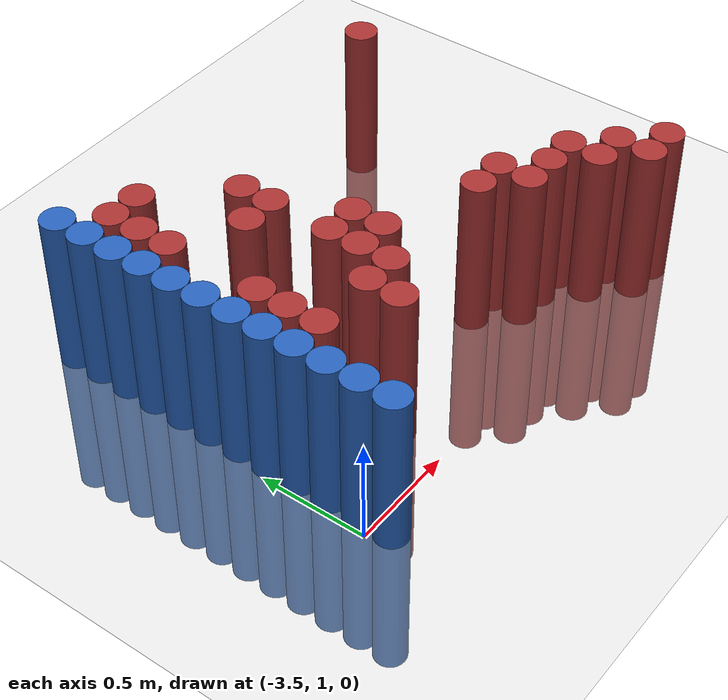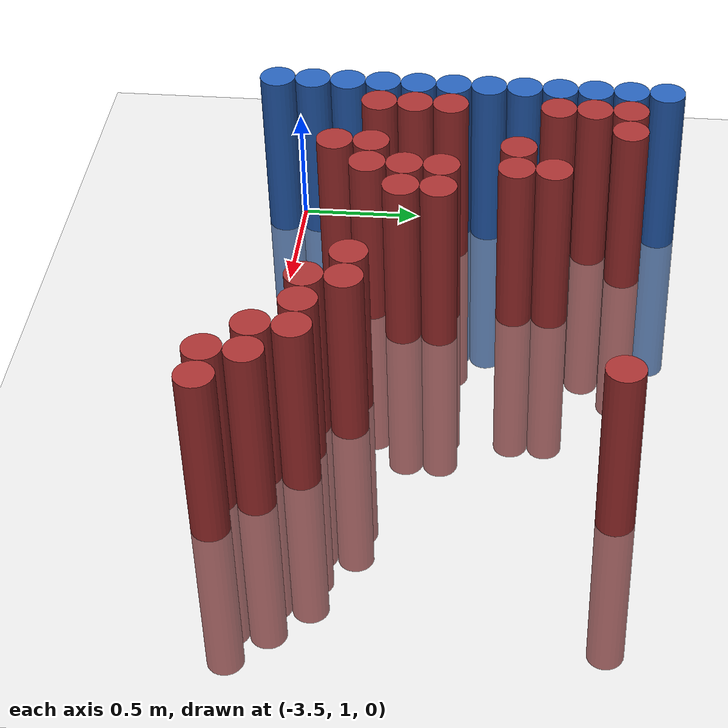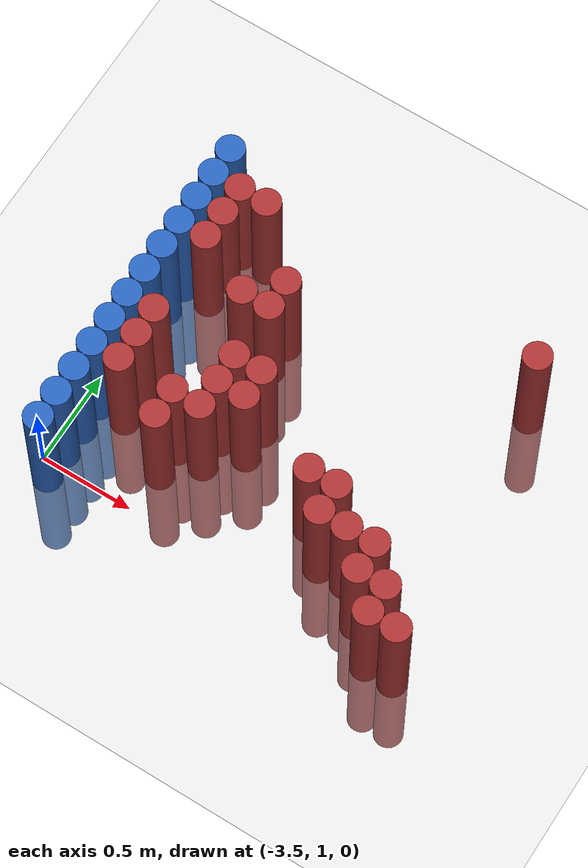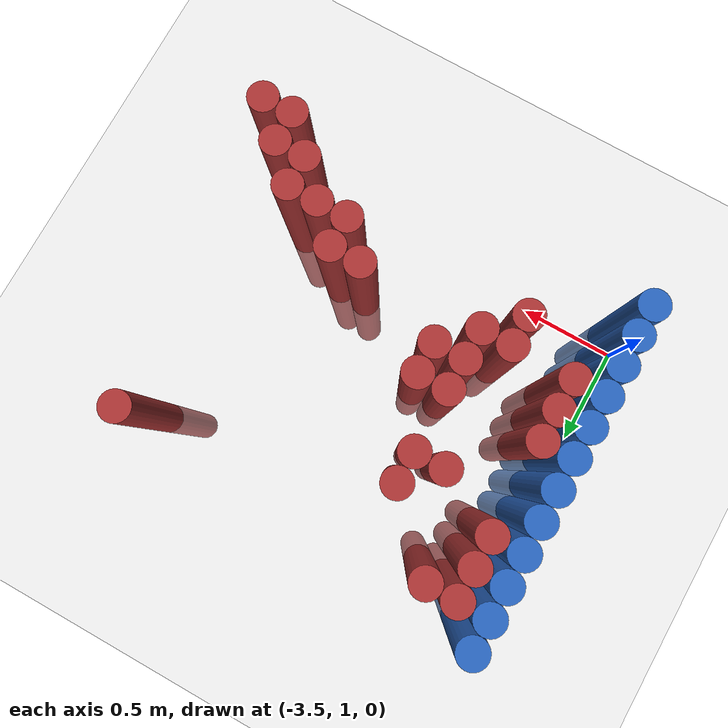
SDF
<sdf version="1.6">
 <world name="default">
  <model name="ground_plane">
   <static>1</static>
   <link name="link">
    <collision name="collision">
     <geometry><plane><normal>0 0 1</normal><size>100 100</size></plane></geometry>
     <surface><friction><ode><mu>100</mu><mu2>50</mu2></ode></friction></surface>
    </collision>
    <visual name="visual">
     <cast_shadows>0</cast_shadows>
     <geometry><plane><normal>0 0 1</normal><size>100 100</size></plane></geometry>
     <material>
      <script><uri>file://media/materials/scripts/gazebo.material</uri><name>Gazebo/Grey</name></script>
     </material>
    </visual>
   </link>
  </model>
  <model name="unit_cylinder_127">
   <static>1</static>
   <pose>-3.425000 0.925000 0.000000 0.000000 0.000000 0.000000</pose>
   <link name="link">
    <inertial>
     <mass>1</mass>
     <inertia><ixx>0.145833</ixx><ixy>0</ixy><ixz>0</ixz><iyy>0.145833</iyy><iyz>0</iyz><izz>0.125</izz></inertia>
    </inertial>
    <collision name="collision">
     <geometry><cylinder><radius>0.075000</radius><length>1.5</length></cylinder></geometry>
    </collision>
    <visual name="visual">
     <geometry><cylinder><radius>0.075000</radius><length>1.5</length></cylinder></geometry>
     <material>
      <ambient>0.152000 0.379000 0.720000 1</ambient>
      <diffuse>0.152000 0.379000 0.720000 1</diffuse>
     </material>
     <material>
      <script><name>Gazebo/Grey</name><uri>file://media/materials/scripts/gazebo.material</uri></script>
     </material>
    </visual>
   </link>
  </model>
  <model name="unit_cylinder_129">
   <static>1</static>
   <pose>-3.425000 1.075000 0.000000 0.000000 0.000000 0.000000</pose>
   <link name="link">
    <inertial>
     <mass>1</mass>
     <inertia><ixx>0.145833</ixx><ixy>0</ixy><ixz>0</ixz><iyy>0.145833</iyy><iyz>0</iyz><izz>0.125</izz></inertia>
    </inertial>
    <collision name="collision">
     <geometry><cylinder><radius>0.075000</radius><length>1.5</length></cylinder></geometry>
    </collision>
    <visual name="visual">
     <geometry><cylinder><radius>0.075000</radius><length>1.5</length></cylinder></geometry>
     <material>
      <ambient>0.152000 0.379000 0.720000 1</ambient>
      <diffuse>0.152000 0.379000 0.720000 1</diffuse>
     </material>
     <material>
      <script><name>Gazebo/Grey</name><uri>file://media/materials/scripts/gazebo.material</uri></script>
     </material>
    </visual>
   </link>
  </model>
  <model name="unit_cylinder_131">
   <static>1</static>
   <pose>-3.425000 1.225000 0.000000 0.000000 0.000000 0.000000</pose>
   <link name="link">
    <inertial>
     <mass>1</mass>
     <inertia><ixx>0.145833</ixx><ixy>0</ixy><ixz>0</ixz><iyy>0.145833</iyy><iyz>0</iyz><izz>0.125</izz></inertia>
    </inertial>
    <collision name="collision">
     <geometry><cylinder><radius>0.075000</radius><length>1.5</length></cylinder></geometry>
    </collision>
    <visual name="visual">
     <geometry><cylinder><radius>0.075000</radius><length>1.5</length></cylinder></geometry>
     <material>
      <ambient>0.152000 0.379000 0.720000 1</ambient>
      <diffuse>0.152000 0.379000 0.720000 1</diffuse>
     </material>
     <material>
      <script><name>Gazebo/Grey</name><uri>file://media/materials/scripts/gazebo.material</uri></script>
     </material>
    </visual>
   </link>
  </model>
  <model name="unit_cylinder_133">
   <static>1</static>
   <pose>-3.425000 1.375000 0.000000 0.000000 0.000000 0.000000</pose>
   <link name="link">
    <inertial>
     <mass>1</mass>
     <inertia><ixx>0.145833</ixx><ixy>0</ixy><ixz>0</ixz><iyy>0.145833</iyy><iyz>0</iyz><izz>0.125</izz></inertia>
    </inertial>
    <collision name="collision">
     <geometry><cylinder><radius>0.075000</radius><length>1.5</length></cylinder></geometry>
    </collision>
    <visual name="visual">
     <geometry><cylinder><radius>0.075000</radius><length>1.5</length></cylinder></geometry>
     <material>
      <ambient>0.152000 0.379000 0.720000 1</ambient>
      <diffuse>0.152000 0.379000 0.720000 1</diffuse>
     </material>
     <material>
      <script><name>Gazebo/Grey</name><uri>file://media/materials/scripts/gazebo.material</uri></script>
     </material>
    </visual>
   </link>
  </model>
  <model name="unit_cylinder_135">
   <static>1</static>
   <pose>-3.425000 1.525000 0.000000 0.000000 0.000000 0.000000</pose>
   <link name="link">
    <inertial>
     <mass>1</mass>
     <inertia><ixx>0.145833</ixx><ixy>0</ixy><ixz>0</ixz><iyy>0.145833</iyy><iyz>0</iyz><izz>0.125</izz></inertia>
    </inertial>
    <collision name="collision">
     <geometry><cylinder><radius>0.075000</radius><length>1.5</length></cylinder></geometry>
    </collision>
    <visual name="visual">
     <geometry><cylinder><radius>0.075000</radius><length>1.5</length></cylinder></geometry>
     <material>
      <ambient>0.152000 0.379000 0.720000 1</ambient>
      <diffuse>0.152000 0.379000 0.720000 1</diffuse>
     </material>
     <material>
      <script><name>Gazebo/Grey</name><uri>file://media/materials/scripts/gazebo.material</uri></script>
     </material>
    </visual>
   </link>
  </model>
  <model name="unit_cylinder_137">
   <static>1</static>
   <pose>-3.425000 1.675000 0.000000 0.000000 0.000000 0.000000</pose>
   <link name="link">
    <inertial>
     <mass>1</mass>
     <inertia><ixx>0.145833</ixx><ixy>0</ixy><ixz>0</ixz><iyy>0.145833</iyy><iyz>0</iyz><izz>0.125</izz></inertia>
    </inertial>
    <collision name="collision">
     <geometry><cylinder><radius>0.075000</radius><length>1.5</length></cylinder></geometry>
    </collision>
    <visual name="visual">
     <geometry><cylinder><radius>0.075000</radius><length>1.5</length></cylinder></geometry>
     <material>
      <ambient>0.152000 0.379000 0.720000 1</ambient>
      <diffuse>0.152000 0.379000 0.720000 1</diffuse>
     </material>
     <material>
      <script><name>Gazebo/Grey</name><uri>file://media/materials/scripts/gazebo.material</uri></script>
     </material>
    </visual>
   </link>
  </model>
  <model name="unit_cylinder_139">
   <static>1</static>
   <pose>-3.425000 1.825000 0.000000 0.000000 0.000000 0.000000</pose>
   <link name="link">
    <inertial>
     <mass>1</mass>
     <inertia><ixx>0.145833</ixx><ixy>0</ixy><ixz>0</ixz><iyy>0.145833</iyy><iyz>0</iyz><izz>0.125</izz></inertia>
    </inertial>
    <collision name="collision">
     <geometry><cylinder><radius>0.075000</radius><length>1.5</length></cylinder></geometry>
    </collision>
    <visual name="visual">
     <geometry><cylinder><radius>0.075000</radius><length>1.5</length></cylinder></geometry>
     <material>
      <ambient>0.152000 0.379000 0.720000 1</ambient>
      <diffuse>0.152000 0.379000 0.720000 1</diffuse>
     </material>
     <material>
      <script><name>Gazebo/Grey</name><uri>file://media/materials/scripts/gazebo.material</uri></script>
     </material>
    </visual>
   </link>
  </model>
  <model name="unit_cylinder_141">
   <static>1</static>
   <pose>-3.425000 1.975000 0.000000 0.000000 0.000000 0.000000</pose>
   <link name="link">
    <inertial>
     <mass>1</mass>
     <inertia><ixx>0.145833</ixx><ixy>0</ixy><ixz>0</ixz><iyy>0.145833</iyy><iyz>0</iyz><izz>0.125</izz></inertia>
    </inertial>
    <collision name="collision">
     <geometry><cylinder><radius>0.075000</radius><length>1.5</length></cylinder></geometry>
    </collision>
    <visual name="visual">
     <geometry><cylinder><radius>0.075000</radius><length>1.5</length></cylinder></geometry>
     <material>
      <ambient>0.152000 0.379000 0.720000 1</ambient>
      <diffuse>0.152000 0.379000 0.720000 1</diffuse>
     </material>
     <material>
      <script><name>Gazebo/Grey</name><uri>file://media/materials/scripts/gazebo.material</uri></script>
     </material>
    </visual>
   </link>
  </model>
  <model name="unit_cylinder_143">
   <static>1</static>
   <pose>-3.425000 2.125000 0.000000 0.000000 0.000000 0.000000</pose>
   <link name="link">
    <inertial>
     <mass>1</mass>
     <inertia><ixx>0.145833</ixx><ixy>0</ixy><ixz>0</ixz><iyy>0.145833</iyy><iyz>0</iyz><izz>0.125</izz></inertia>
    </inertial>
    <collision name="collision">
     <geometry><cylinder><radius>0.075000</radius><length>1.5</length></cylinder></geometry>
    </collision>
    <visual name="visual">
     <geometry><cylinder><radius>0.075000</radius><length>1.5</length></cylinder></geometry>
     <material>
      <ambient>0.152000 0.379000 0.720000 1</ambient>
      <diffuse>0.152000 0.379000 0.720000 1</diffuse>
     </material>
     <material>
      <script><name>Gazebo/Grey</name><uri>file://media/materials/scripts/gazebo.material</uri></script>
     </material>
    </visual>
   </link>
  </model>
  <model name="unit_cylinder_145">
   <static>1</static>
   <pose>-3.425000 2.275000 0.000000 0.000000 0.000000 0.000000</pose>
   <link name="link">
    <inertial>
     <mass>1</mass>
     <inertia><ixx>0.145833</ixx><ixy>0</ixy><ixz>0</ixz><iyy>0.145833</iyy><iyz>0</iyz><izz>0.125</izz></inertia>
    </inertial>
    <collision name="collision">
     <geometry><cylinder><radius>0.075000</radius><length>1.5</length></cylinder></geometry>
    </collision>
    <visual name="visual">
     <geometry><cylinder><radius>0.075000</radius><length>1.5</length></cylinder></geometry>
     <material>
      <ambient>0.152000 0.379000 0.720000 1</ambient>
      <diffuse>0.152000 0.379000 0.720000 1</diffuse>
     </material>
     <material>
      <script><name>Gazebo/Grey</name><uri>file://media/materials/scripts/gazebo.material</uri></script>
     </material>
    </visual>
   </link>
  </model>
  <model name="unit_cylinder_147">
   <static>1</static>
   <pose>-3.425000 2.425000 0.000000 0.000000 0.000000 0.000000</pose>
   <link name="link">
    <inertial>
     <mass>1</mass>
     <inertia><ixx>0.145833</ixx><ixy>0</ixy><ixz>0</ixz><iyy>0.145833</iyy><iyz>0</iyz><izz>0.125</izz></inertia>
    </inertial>
    <collision name="collision">
     <geometry><cylinder><radius>0.075000</radius><length>1.5</length></cylinder></geometry>
    </collision>
    <visual name="visual">
     <geometry><cylinder><radius>0.075000</radius><length>1.5</length></cylinder></geometry>
     <material>
      <ambient>0.152000 0.379000 0.720000 1</ambient>
      <diffuse>0.152000 0.379000 0.720000 1</diffuse>
     </material>
     <material>
      <script><name>Gazebo/Grey</name><uri>file://media/materials/scripts/gazebo.material</uri></script>
     </material>
    </visual>
   </link>
  </model>
  <model name="unit_cylinder_149">
   <static>1</static>
   <pose>-3.425000 2.575000 0.000000 0.000000 0.000000 0.000000</pose>
   <link name="link">
    <inertial>
     <mass>1</mass>
     <inertia><ixx>0.145833</ixx><ixy>0</ixy><ixz>0</ixz><iyy>0.145833</iyy><iyz>0</iyz><izz>0.125</izz></inertia>
    </inertial>
    <collision name="collision">
     <geometry><cylinder><radius>0.075000</radius><length>1.5</length></cylinder></geometry>
    </collision>
    <visual name="visual">
     <geometry><cylinder><radius>0.075000</radius><length>1.5</length></cylinder></geometry>
     <material>
      <ambient>0.152000 0.379000 0.720000 1</ambient>
      <diffuse>0.152000 0.379000 0.720000 1</diffuse>
     </material>
     <material>
      <script><name>Gazebo/Grey</name><uri>file://media/materials/scripts/gazebo.material</uri></script>
     </material>
    </visual>
   </link>
  </model>
  <model name="unit_cylinder_227">
   <static>1</static>
   <pose>-3.425000 0.925000 0.000000 0.000000 0.000000 0.000000</pose>
   <link name="link">
    <inertial>
     <mass>1</mass>
     <inertia><ixx>0.145833</ixx><ixy>0</ixy><ixz>0</ixz><iyy>0.145833</iyy><iyz>0</iyz><izz>0.125</izz></inertia>
    </inertial>
    <collision name="collision">
     <geometry><cylinder><radius>0.075000</radius><length>1.5</length></cylinder></geometry>
    </collision>
    <visual name="visual">
     <geometry><cylinder><radius>0.075000</radius><length>1.5</length></cylinder></geometry>
     <material>
      <ambient>0.152000 0.379000 0.720000 1</ambient>
      <diffuse>0.152000 0.379000 0.720000 1</diffuse>
     </material>
     <material>
      <script><name>Gazebo/Grey</name><uri>file://media/materials/scripts/gazebo.material</uri></script>
     </material>
    </visual>
   </link>
  </model>
  <model name="unit_cylinder_228">
   <static>1</static>
   <pose>-3.425000 1.075000 0.000000 0.000000 0.000000 0.000000</pose>
   <link name="link">
    <inertial>
     <mass>1</mass>
     <inertia><ixx>0.145833</ixx><ixy>0</ixy><ixz>0</ixz><iyy>0.145833</iyy><iyz>0</iyz><izz>0.125</izz></inertia>
    </inertial>
    <collision name="collision">
     <geometry><cylinder><radius>0.075000</radius><length>1.5</length></cylinder></geometry>
    </collision>
    <visual name="visual">
     <geometry><cylinder><radius>0.075000</radius><length>1.5</length></cylinder></geometry>
     <material>
      <ambient>0.152000 0.379000 0.720000 1</ambient>
      <diffuse>0.152000 0.379000 0.720000 1</diffuse>
     </material>
     <material>
      <script><name>Gazebo/Grey</name><uri>file://media/materials/scripts/gazebo.material</uri></script>
     </material>
    </visual>
   </link>
  </model>
  <model name="unit_cylinder_229">
   <static>1</static>
   <pose>-3.425000 1.225000 0.000000 0.000000 0.000000 0.000000</pose>
   <link name="link">
    <inertial>
     <mass>1</mass>
     <inertia><ixx>0.145833</ixx><ixy>0</ixy><ixz>0</ixz><iyy>0.145833</iyy><iyz>0</iyz><izz>0.125</izz></inertia>
    </inertial>
    <collision name="collision">
     <geometry><cylinder><radius>0.075000</radius><length>1.5</length></cylinder></geometry>
    </collision>
    <visual name="visual">
     <geometry><cylinder><radius>0.075000</radius><length>1.5</length></cylinder></geometry>
     <material>
      <ambient>0.152000 0.379000 0.720000 1</ambient>
      <diffuse>0.152000 0.379000 0.720000 1</diffuse>
     </material>
     <material>
      <script><name>Gazebo/Grey</name><uri>file://media/materials/scripts/gazebo.material</uri></script>
     </material>
    </visual>
   </link>
  </model>
  <model name="unit_cylinder_230">
   <static>1</static>
   <pose>-3.425000 1.375000 0.000000 0.000000 0.000000 0.000000</pose>
   <link name="link">
    <inertial>
     <mass>1</mass>
     <inertia><ixx>0.145833</ixx><ixy>0</ixy><ixz>0</ixz><iyy>0.145833</iyy><iyz>0</iyz><izz>0.125</izz></inertia>
    </inertial>
    <collision name="collision">
     <geometry><cylinder><radius>0.075000</radius><length>1.5</length></cylinder></geometry>
    </collision>
    <visual name="visual">
     <geometry><cylinder><radius>0.075000</radius><length>1.5</length></cylinder></geometry>
     <material>
      <ambient>0.152000 0.379000 0.720000 1</ambient>
      <diffuse>0.152000 0.379000 0.720000 1</diffuse>
     </material>
     <material>
      <script><name>Gazebo/Grey</name><uri>file://media/materials/scripts/gazebo.material</uri></script>
     </material>
    </visual>
   </link>
  </model>
  <model name="unit_cylinder_231">
   <static>1</static>
   <pose>-3.425000 1.525000 0.000000 0.000000 0.000000 0.000000</pose>
   <link name="link">
    <inertial>
     <mass>1</mass>
     <inertia><ixx>0.145833</ixx><ixy>0</ixy><ixz>0</ixz><iyy>0.145833</iyy><iyz>0</iyz><izz>0.125</izz></inertia>
    </inertial>
    <collision name="collision">
     <geometry><cylinder><radius>0.075000</radius><length>1.5</length></cylinder></geometry>
    </collision>
    <visual name="visual">
     <geometry><cylinder><radius>0.075000</radius><length>1.5</length></cylinder></geometry>
     <material>
      <ambient>0.152000 0.379000 0.720000 1</ambient>
      <diffuse>0.152000 0.379000 0.720000 1</diffuse>
     </material>
     <material>
      <script><name>Gazebo/Grey</name><uri>file://media/materials/scripts/gazebo.material</uri></script>
     </material>
    </visual>
   </link>
  </model>
  <model name="unit_cylinder_232">
   <static>1</static>
   <pose>-3.425000 1.675000 0.000000 0.000000 0.000000 0.000000</pose>
   <link name="link">
    <inertial>
     <mass>1</mass>
     <inertia><ixx>0.145833</ixx><ixy>0</ixy><ixz>0</ixz><iyy>0.145833</iyy><iyz>0</iyz><izz>0.125</izz></inertia>
    </inertial>
    <collision name="collision">
     <geometry><cylinder><radius>0.075000</radius><length>1.5</length></cylinder></geometry>
    </collision>
    <visual name="visual">
     <geometry><cylinder><radius>0.075000</radius><length>1.5</length></cylinder></geometry>
     <material>
      <ambient>0.152000 0.379000 0.720000 1</ambient>
      <diffuse>0.152000 0.379000 0.720000 1</diffuse>
     </material>
     <material>
      <script><name>Gazebo/Grey</name><uri>file://media/materials/scripts/gazebo.material</uri></script>
     </material>
    </visual>
   </link>
  </model>
  <model name="unit_cylinder_233">
   <static>1</static>
   <pose>-3.425000 1.825000 0.000000 0.000000 0.000000 0.000000</pose>
   <link name="link">
    <inertial>
     <mass>1</mass>
     <inertia><ixx>0.145833</ixx><ixy>0</ixy><ixz>0</ixz><iyy>0.145833</iyy><iyz>0</iyz><izz>0.125</izz></inertia>
    </inertial>
    <collision name="collision">
     <geometry><cylinder><radius>0.075000</radius><length>1.5</length></cylinder></geometry>
    </collision>
    <visual name="visual">
     <geometry><cylinder><radius>0.075000</radius><length>1.5</length></cylinder></geometry>
     <material>
      <ambient>0.152000 0.379000 0.720000 1</ambient>
      <diffuse>0.152000 0.379000 0.720000 1</diffuse>
     </material>
     <material>
      <script><name>Gazebo/Grey</name><uri>file://media/materials/scripts/gazebo.material</uri></script>
     </material>
    </visual>
   </link>
  </model>
  <model name="unit_cylinder_234">
   <static>1</static>
   <pose>-3.425000 1.975000 0.000000 0.000000 0.000000 0.000000</pose>
   <link name="link">
    <inertial>
     <mass>1</mass>
     <inertia><ixx>0.145833</ixx><ixy>0</ixy><ixz>0</ixz><iyy>0.145833</iyy><iyz>0</iyz><izz>0.125</izz></inertia>
    </inertial>
    <collision name="collision">
     <geometry><cylinder><radius>0.075000</radius><length>1.5</length></cylinder></geometry>
    </collision>
    <visual name="visual">
     <geometry><cylinder><radius>0.075000</radius><length>1.5</length></cylinder></geometry>
     <material>
      <ambient>0.152000 0.379000 0.720000 1</ambient>
      <diffuse>0.152000 0.379000 0.720000 1</diffuse>
     </material>
     <material>
      <script><name>Gazebo/Grey</name><uri>file://media/materials/scripts/gazebo.material</uri></script>
     </material>
    </visual>
   </link>
  </model>
  <model name="unit_cylinder_235">
   <static>1</static>
   <pose>-3.425000 2.125000 0.000000 0.000000 0.000000 0.000000</pose>
   <link name="link">
    <inertial>
     <mass>1</mass>
     <inertia><ixx>0.145833</ixx><ixy>0</ixy><ixz>0</ixz><iyy>0.145833</iyy><iyz>0</iyz><izz>0.125</izz></inertia>
    </inertial>
    <collision name="collision">
     <geometry><cylinder><radius>0.075000</radius><length>1.5</length></cylinder></geometry>
    </collision>
    <visual name="visual">
     <geometry><cylinder><radius>0.075000</radius><length>1.5</length></cylinder></geometry>
     <material>
      <ambient>0.152000 0.379000 0.720000 1</ambient>
      <diffuse>0.152000 0.379000 0.720000 1</diffuse>
     </material>
     <material>
      <script><name>Gazebo/Grey</name><uri>file://media/materials/scripts/gazebo.material</uri></script>
     </material>
    </visual>
   </link>
  </model>
  <model name="unit_cylinder_236">
   <static>1</static>
   <pose>-3.425000 2.275000 0.000000 0.000000 0.000000 0.000000</pose>
   <link name="link">
    <inertial>
     <mass>1</mass>
     <inertia><ixx>0.145833</ixx><ixy>0</ixy><ixz>0</ixz><iyy>0.145833</iyy><iyz>0</iyz><izz>0.125</izz></inertia>
    </inertial>
    <collision name="collision">
     <geometry><cylinder><radius>0.075000</radius><length>1.5</length></cylinder></geometry>
    </collision>
    <visual name="visual">
     <geometry><cylinder><radius>0.075000</radius><length>1.5</length></cylinder></geometry>
     <material>
      <ambient>0.152000 0.379000 0.720000 1</ambient>
      <diffuse>0.152000 0.379000 0.720000 1</diffuse>
     </material>
     <material>
      <script><name>Gazebo/Grey</name><uri>file://media/materials/scripts/gazebo.material</uri></script>
     </material>
    </visual>
   </link>
  </model>
  <model name="unit_cylinder_237">
   <static>1</static>
   <pose>-3.425000 2.425000 0.000000 0.000000 0.000000 0.000000</pose>
   <link name="link">
    <inertial>
     <mass>1</mass>
     <inertia><ixx>0.145833</ixx><ixy>0</ixy><ixz>0</ixz><iyy>0.145833</iyy><iyz>0</iyz><izz>0.125</izz></inertia>
    </inertial>
    <collision name="collision">
     <geometry><cylinder><radius>0.075000</radius><length>1.5</length></cylinder></geometry>
    </collision>
    <visual name="visual">
     <geometry><cylinder><radius>0.075000</radius><length>1.5</length></cylinder></geometry>
     <material>
      <ambient>0.152000 0.379000 0.720000 1</ambient>
      <diffuse>0.152000 0.379000 0.720000 1</diffuse>
     </material>
     <material>
      <script><name>Gazebo/Grey</name><uri>file://media/materials/scripts/gazebo.material</uri></script>
     </material>
    </visual>
   </link>
  </model>
  <model name="unit_cylinder_238">
   <static>1</static>
   <pose>-3.425000 2.575000 0.000000 0.000000 0.000000 0.000000</pose>
   <link name="link">
    <inertial>
     <mass>1</mass>
     <inertia><ixx>0.145833</ixx><ixy>0</ixy><ixz>0</ixz><iyy>0.145833</iyy><iyz>0</iyz><izz>0.125</izz></inertia>
    </inertial>
    <collision name="collision">
     <geometry><cylinder><radius>0.075000</radius><length>1.5</length></cylinder></geometry>
    </collision>
    <visual name="visual">
     <geometry><cylinder><radius>0.075000</radius><length>1.5</length></cylinder></geometry>
     <material>
      <ambient>0.152000 0.379000 0.720000 1</ambient>
      <diffuse>0.152000 0.379000 0.720000 1</diffuse>
     </material>
     <material>
      <script><name>Gazebo/Grey</name><uri>file://media/materials/scripts/gazebo.material</uri></script>
     </material>
    </visual>
   </link>
  </model>
  <model name="unit_cylinder_264">
   <static>1</static>
   <pose>-3.275000 1.375000 0.000000 0.000000 0.000000 0.000000</pose>
   <link name="link">
    <inertial>
     <mass>1</mass>
     <inertia><ixx>0.145833</ixx><ixy>0</ixy><ixz>0</ixz><iyy>0.145833</iyy><iyz>0</iyz><izz>0.125</izz></inertia>
    </inertial>
    <collision name="collision">
     <geometry><cylinder><radius>0.075000</radius><length>1.5</length></cylinder></geometry>
    </collision>
    <visual name="visual">
     <geometry><cylinder><radius>0.075000</radius><length>1.5</length></cylinder></geometry>
     <material>
      <ambient>0.648000 0.192000 0.192000 1</ambient>
      <diffuse>0.648000 0.192000 0.192000 1</diffuse>
     </material>
     <material>
      <script><name>Gazebo/Grey</name><uri>file://media/materials/scripts/gazebo.material</uri></script>
     </material>
    </visual>
   </link>
  </model>
  <model name="unit_cylinder_265">
   <static>1</static>
   <pose>-3.275000 1.525000 0.000000 0.000000 0.000000 0.000000</pose>
   <link name="link">
    <inertial>
     <mass>1</mass>
     <inertia><ixx>0.145833</ixx><ixy>0</ixy><ixz>0</ixz><iyy>0.145833</iyy><iyz>0</iyz><izz>0.125</izz></inertia>
    </inertial>
    <collision name="collision">
     <geometry><cylinder><radius>0.075000</radius><length>1.5</length></cylinder></geometry>
    </collision>
    <visual name="visual">
     <geometry><cylinder><radius>0.075000</radius><length>1.5</length></cylinder></geometry>
     <material>
      <ambient>0.648000 0.192000 0.192000 1</ambient>
      <diffuse>0.648000 0.192000 0.192000 1</diffuse>
     </material>
     <material>
      <script><name>Gazebo/Grey</name><uri>file://media/materials/scripts/gazebo.material</uri></script>
     </material>
    </visual>
   </link>
  </model>
  <model name="unit_cylinder_266">
   <static>1</static>
   <pose>-3.275000 1.675000 0.000000 0.000000 0.000000 0.000000</pose>
   <link name="link">
    <inertial>
     <mass>1</mass>
     <inertia><ixx>0.145833</ixx><ixy>0</ixy><ixz>0</ixz><iyy>0.145833</iyy><iyz>0</iyz><izz>0.125</izz></inertia>
    </inertial>
    <collision name="collision">
     <geometry><cylinder><radius>0.075000</radius><length>1.5</length></cylinder></geometry>
    </collision>
    <visual name="visual">
     <geometry><cylinder><radius>0.075000</radius><length>1.5</length></cylinder></geometry>
     <material>
      <ambient>0.648000 0.192000 0.192000 1</ambient>
      <diffuse>0.648000 0.192000 0.192000 1</diffuse>
     </material>
     <material>
      <script><name>Gazebo/Grey</name><uri>file://media/materials/scripts/gazebo.material</uri></script>
     </material>
    </visual>
   </link>
  </model>
  <model name="unit_cylinder_267">
   <static>1</static>
   <pose>-3.275000 2.125000 0.000000 0.000000 0.000000 0.000000</pose>
   <link name="link">
    <inertial>
     <mass>1</mass>
     <inertia><ixx>0.145833</ixx><ixy>0</ixy><ixz>0</ixz><iyy>0.145833</iyy><iyz>0</iyz><izz>0.125</izz></inertia>
    </inertial>
    <collision name="collision">
     <geometry><cylinder><radius>0.075000</radius><length>1.5</length></cylinder></geometry>
    </collision>
    <visual name="visual">
     <geometry><cylinder><radius>0.075000</radius><length>1.5</length></cylinder></geometry>
     <material>
      <ambient>0.648000 0.192000 0.192000 1</ambient>
      <diffuse>0.648000 0.192000 0.192000 1</diffuse>
     </material>
     <material>
      <script><name>Gazebo/Grey</name><uri>file://media/materials/scripts/gazebo.material</uri></script>
     </material>
    </visual>
   </link>
  </model>
  <model name="unit_cylinder_268">
   <static>1</static>
   <pose>-3.275000 2.275000 0.000000 0.000000 0.000000 0.000000</pose>
   <link name="link">
    <inertial>
     <mass>1</mass>
     <inertia><ixx>0.145833</ixx><ixy>0</ixy><ixz>0</ixz><iyy>0.145833</iyy><iyz>0</iyz><izz>0.125</izz></inertia>
    </inertial>
    <collision name="collision">
     <geometry><cylinder><radius>0.075000</radius><length>1.5</length></cylinder></geometry>
    </collision>
    <visual name="visual">
     <geometry><cylinder><radius>0.075000</radius><length>1.5</length></cylinder></geometry>
     <material>
      <ambient>0.648000 0.192000 0.192000 1</ambient>
      <diffuse>0.648000 0.192000 0.192000 1</diffuse>
     </material>
     <material>
      <script><name>Gazebo/Grey</name><uri>file://media/materials/scripts/gazebo.material</uri></script>
     </material>
    </visual>
   </link>
  </model>
  <model name="unit_cylinder_269">
   <static>1</static>
   <pose>-3.275000 2.425000 0.000000 0.000000 0.000000 0.000000</pose>
   <link name="link">
    <inertial>
     <mass>1</mass>
     <inertia><ixx>0.145833</ixx><ixy>0</ixy><ixz>0</ixz><iyy>0.145833</iyy><iyz>0</iyz><izz>0.125</izz></inertia>
    </inertial>
    <collision name="collision">
     <geometry><cylinder><radius>0.075000</radius><length>1.5</length></cylinder></geometry>
    </collision>
    <visual name="visual">
     <geometry><cylinder><radius>0.075000</radius><length>1.5</length></cylinder></geometry>
     <material>
      <ambient>0.648000 0.192000 0.192000 1</ambient>
      <diffuse>0.648000 0.192000 0.192000 1</diffuse>
     </material>
     <material>
      <script><name>Gazebo/Grey</name><uri>file://media/materials/scripts/gazebo.material</uri></script>
     </material>
    </visual>
   </link>
  </model>
  <model name="unit_cylinder_278">
   <static>1</static>
   <pose>-3.125000 2.425000 0.000000 0.000000 0.000000 0.000000</pose>
   <link name="link">
    <inertial>
     <mass>1</mass>
     <inertia><ixx>0.145833</ixx><ixy>0</ixy><ixz>0</ixz><iyy>0.145833</iyy><iyz>0</iyz><izz>0.125</izz></inertia>
    </inertial>
    <collision name="collision">
     <geometry><cylinder><radius>0.075000</radius><length>1.5</length></cylinder></geometry>
    </collision>
    <visual name="visual">
     <geometry><cylinder><radius>0.075000</radius><length>1.5</length></cylinder></geometry>
     <material>
      <ambient>0.648000 0.192000 0.192000 1</ambient>
      <diffuse>0.648000 0.192000 0.192000 1</diffuse>
     </material>
     <material>
      <script><name>Gazebo/Grey</name><uri>file://media/materials/scripts/gazebo.material</uri></script>
     </material>
    </visual>
   </link>
  </model>
  <model name="unit_cylinder_282">
   <static>1</static>
   <pose>-2.975000 1.225000 0.000000 0.000000 0.000000 0.000000</pose>
   <link name="link">
    <inertial>
     <mass>1</mass>
     <inertia><ixx>0.145833</ixx><ixy>0</ixy><ixz>0</ixz><iyy>0.145833</iyy><iyz>0</iyz><izz>0.125</izz></inertia>
    </inertial>
    <collision name="collision">
     <geometry><cylinder><radius>0.075000</radius><length>1.5</length></cylinder></geometry>
    </collision>
    <visual name="visual">
     <geometry><cylinder><radius>0.075000</radius><length>1.5</length></cylinder></geometry>
     <material>
      <ambient>0.648000 0.192000 0.192000 1</ambient>
      <diffuse>0.648000 0.192000 0.192000 1</diffuse>
     </material>
     <material>
      <script><name>Gazebo/Grey</name><uri>file://media/materials/scripts/gazebo.material</uri></script>
     </material>
    </visual>
   </link>
  </model>
  <model name="unit_cylinder_283">
   <static>1</static>
   <pose>-2.975000 1.375000 0.000000 0.000000 0.000000 0.000000</pose>
   <link name="link">
    <inertial>
     <mass>1</mass>
     <inertia><ixx>0.145833</ixx><ixy>0</ixy><ixz>0</ixz><iyy>0.145833</iyy><iyz>0</iyz><izz>0.125</izz></inertia>
    </inertial>
    <collision name="collision">
     <geometry><cylinder><radius>0.075000</radius><length>1.5</length></cylinder></geometry>
    </collision>
    <visual name="visual">
     <geometry><cylinder><radius>0.075000</radius><length>1.5</length></cylinder></geometry>
     <material>
      <ambient>0.648000 0.192000 0.192000 1</ambient>
      <diffuse>0.648000 0.192000 0.192000 1</diffuse>
     </material>
     <material>
      <script><name>Gazebo/Grey</name><uri>file://media/materials/scripts/gazebo.material</uri></script>
     </material>
    </visual>
   </link>
  </model>
  <model name="unit_cylinder_284">
   <static>1</static>
   <pose>-2.975000 1.975000 0.000000 0.000000 0.000000 0.000000</pose>
   <link name="link">
    <inertial>
     <mass>1</mass>
     <inertia><ixx>0.145833</ixx><ixy>0</ixy><ixz>0</ixz><iyy>0.145833</iyy><iyz>0</iyz><izz>0.125</izz></inertia>
    </inertial>
    <collision name="collision">
     <geometry><cylinder><radius>0.075000</radius><length>1.5</length></cylinder></geometry>
    </collision>
    <visual name="visual">
     <geometry><cylinder><radius>0.075000</radius><length>1.5</length></cylinder></geometry>
     <material>
      <ambient>0.648000 0.192000 0.192000 1</ambient>
      <diffuse>0.648000 0.192000 0.192000 1</diffuse>
     </material>
     <material>
      <script><name>Gazebo/Grey</name><uri>file://media/materials/scripts/gazebo.material</uri></script>
     </material>
    </visual>
   </link>
  </model>
  <model name="unit_cylinder_290">
   <static>1</static>
   <pose>-2.825000 1.375000 0.000000 0.000000 0.000000 0.000000</pose>
   <link name="link">
    <inertial>
     <mass>1</mass>
     <inertia><ixx>0.145833</ixx><ixy>0</ixy><ixz>0</ixz><iyy>0.145833</iyy><iyz>0</iyz><izz>0.125</izz></inertia>
    </inertial>
    <collision name="collision">
     <geometry><cylinder><radius>0.075000</radius><length>1.5</length></cylinder></geometry>
    </collision>
    <visual name="visual">
     <geometry><cylinder><radius>0.075000</radius><length>1.5</length></cylinder></geometry>
     <material>
      <ambient>0.648000 0.192000 0.192000 1</ambient>
      <diffuse>0.648000 0.192000 0.192000 1</diffuse>
     </material>
     <material>
      <script><name>Gazebo/Grey</name><uri>file://media/materials/scripts/gazebo.material</uri></script>
     </material>
    </visual>
   </link>
  </model>
  <model name="unit_cylinder_291">
   <static>1</static>
   <pose>-2.825000 1.525000 0.000000 0.000000 0.000000 0.000000</pose>
   <link name="link">
    <inertial>
     <mass>1</mass>
     <inertia><ixx>0.145833</ixx><ixy>0</ixy><ixz>0</ixz><iyy>0.145833</iyy><iyz>0</iyz><izz>0.125</izz></inertia>
    </inertial>
    <collision name="collision">
     <geometry><cylinder><radius>0.075000</radius><length>1.5</length></cylinder></geometry>
    </collision>
    <visual name="visual">
     <geometry><cylinder><radius>0.075000</radius><length>1.5</length></cylinder></geometry>
     <material>
      <ambient>0.648000 0.192000 0.192000 1</ambient>
      <diffuse>0.648000 0.192000 0.192000 1</diffuse>
     </material>
     <material>
      <script><name>Gazebo/Grey</name><uri>file://media/materials/scripts/gazebo.material</uri></script>
     </material>
    </visual>
   </link>
  </model>
  <model name="unit_cylinder_292">
   <static>1</static>
   <pose>-2.825000 1.675000 0.000000 0.000000 0.000000 0.000000</pose>
   <link name="link">
    <inertial>
     <mass>1</mass>
     <inertia><ixx>0.145833</ixx><ixy>0</ixy><ixz>0</ixz><iyy>0.145833</iyy><iyz>0</iyz><izz>0.125</izz></inertia>
    </inertial>
    <collision name="collision">
     <geometry><cylinder><radius>0.075000</radius><length>1.5</length></cylinder></geometry>
    </collision>
    <visual name="visual">
     <geometry><cylinder><radius>0.075000</radius><length>1.5</length></cylinder></geometry>
     <material>
      <ambient>0.648000 0.192000 0.192000 1</ambient>
      <diffuse>0.648000 0.192000 0.192000 1</diffuse>
     </material>
     <material>
      <script><name>Gazebo/Grey</name><uri>file://media/materials/scripts/gazebo.material</uri></script>
     </material>
    </visual>
   </link>
  </model>
  <model name="unit_cylinder_293">
   <static>1</static>
   <pose>-2.825000 1.975000 0.000000 0.000000 0.000000 0.000000</pose>
   <link name="link">
    <inertial>
     <mass>1</mass>
     <inertia><ixx>0.145833</ixx><ixy>0</ixy><ixz>0</ixz><iyy>0.145833</iyy><iyz>0</iyz><izz>0.125</izz></inertia>
    </inertial>
    <collision name="collision">
     <geometry><cylinder><radius>0.075000</radius><length>1.5</length></cylinder></geometry>
    </collision>
    <visual name="visual">
     <geometry><cylinder><radius>0.075000</radius><length>1.5</length></cylinder></geometry>
     <material>
      <ambient>0.648000 0.192000 0.192000 1</ambient>
      <diffuse>0.648000 0.192000 0.192000 1</diffuse>
     </material>
     <material>
      <script><name>Gazebo/Grey</name><uri>file://media/materials/scripts/gazebo.material</uri></script>
     </material>
    </visual>
   </link>
  </model>
  <model name="unit_cylinder_294">
   <static>1</static>
   <pose>-2.825000 2.125000 0.000000 0.000000 0.000000 0.000000</pose>
   <link name="link">
    <inertial>
     <mass>1</mass>
     <inertia><ixx>0.145833</ixx><ixy>0</ixy><ixz>0</ixz><iyy>0.145833</iyy><iyz>0</iyz><izz>0.125</izz></inertia>
    </inertial>
    <collision name="collision">
     <geometry><cylinder><radius>0.075000</radius><length>1.5</length></cylinder></geometry>
    </collision>
    <visual name="visual">
     <geometry><cylinder><radius>0.075000</radius><length>1.5</length></cylinder></geometry>
     <material>
      <ambient>0.648000 0.192000 0.192000 1</ambient>
      <diffuse>0.648000 0.192000 0.192000 1</diffuse>
     </material>
     <material>
      <script><name>Gazebo/Grey</name><uri>file://media/materials/scripts/gazebo.material</uri></script>
     </material>
    </visual>
   </link>
  </model>
  <model name="unit_cylinder_299">
   <static>1</static>
   <pose>-2.675000 1.525000 0.000000 0.000000 0.000000 0.000000</pose>
   <link name="link">
    <inertial>
     <mass>1</mass>
     <inertia><ixx>0.145833</ixx><ixy>0</ixy><ixz>0</ixz><iyy>0.145833</iyy><iyz>0</iyz><izz>0.125</izz></inertia>
    </inertial>
    <collision name="collision">
     <geometry><cylinder><radius>0.075000</radius><length>1.5</length></cylinder></geometry>
    </collision>
    <visual name="visual">
     <geometry><cylinder><radius>0.075000</radius><length>1.5</length></cylinder></geometry>
     <material>
      <ambient>0.648000 0.192000 0.192000 1</ambient>
      <diffuse>0.648000 0.192000 0.192000 1</diffuse>
     </material>
     <material>
      <script><name>Gazebo/Grey</name><uri>file://media/materials/scripts/gazebo.material</uri></script>
     </material>
    </visual>
   </link>
  </model>
  <model name="unit_cylinder_300">
   <static>1</static>
   <pose>-2.675000 1.675000 0.000000 0.000000 0.000000 0.000000</pose>
   <link name="link">
    <inertial>
     <mass>1</mass>
     <inertia><ixx>0.145833</ixx><ixy>0</ixy><ixz>0</ixz><iyy>0.145833</iyy><iyz>0</iyz><izz>0.125</izz></inertia>
    </inertial>
    <collision name="collision">
     <geometry><cylinder><radius>0.075000</radius><length>1.5</length></cylinder></geometry>
    </collision>
    <visual name="visual">
     <geometry><cylinder><radius>0.075000</radius><length>1.5</length></cylinder></geometry>
     <material>
      <ambient>0.648000 0.192000 0.192000 1</ambient>
      <diffuse>0.648000 0.192000 0.192000 1</diffuse>
     </material>
     <material>
      <script><name>Gazebo/Grey</name><uri>file://media/materials/scripts/gazebo.material</uri></script>
     </material>
    </visual>
   </link>
  </model>
  <model name="unit_cylinder_310">
   <static>1</static>
   <pose>-2.225000 1.375000 0.000000 0.000000 0.000000 0.000000</pose>
   <link name="link">
    <inertial>
     <mass>1</mass>
     <inertia><ixx>0.145833</ixx><ixy>0</ixy><ixz>0</ixz><iyy>0.145833</iyy><iyz>0</iyz><izz>0.125</izz></inertia>
    </inertial>
    <collision name="collision">
     <geometry><cylinder><radius>0.075000</radius><length>1.5</length></cylinder></geometry>
    </collision>
    <visual name="visual">
     <geometry><cylinder><radius>0.075000</radius><length>1.5</length></cylinder></geometry>
     <material>
      <ambient>0.648000 0.192000 0.192000 1</ambient>
      <diffuse>0.648000 0.192000 0.192000 1</diffuse>
     </material>
     <material>
      <script><name>Gazebo/Grey</name><uri>file://media/materials/scripts/gazebo.material</uri></script>
     </material>
    </visual>
   </link>
  </model>
  <model name="unit_cylinder_312">
   <static>1</static>
   <pose>-2.075000 1.225000 0.000000 0.000000 0.000000 0.000000</pose>
   <link name="link">
    <inertial>
     <mass>1</mass>
     <inertia><ixx>0.145833</ixx><ixy>0</ixy><ixz>0</ixz><iyy>0.145833</iyy><iyz>0</iyz><izz>0.125</izz></inertia>
    </inertial>
    <collision name="collision">
     <geometry><cylinder><radius>0.075000</radius><length>1.5</length></cylinder></geometry>
    </collision>
    <visual name="visual">
     <geometry><cylinder><radius>0.075000</radius><length>1.5</length></cylinder></geometry>
     <material>
      <ambient>0.648000 0.192000 0.192000 1</ambient>
      <diffuse>0.648000 0.192000 0.192000 1</diffuse>
     </material>
     <material>
      <script><name>Gazebo/Grey</name><uri>file://media/materials/scripts/gazebo.material</uri></script>
     </material>
    </visual>
   </link>
  </model>
  <model name="unit_cylinder_313">
   <static>1</static>
   <pose>-2.075000 1.375000 0.000000 0.000000 0.000000 0.000000</pose>
   <link name="link">
    <inertial>
     <mass>1</mass>
     <inertia><ixx>0.145833</ixx><ixy>0</ixy><ixz>0</ixz><iyy>0.145833</iyy><iyz>0</iyz><izz>0.125</izz></inertia>
    </inertial>
    <collision name="collision">
     <geometry><cylinder><radius>0.075000</radius><length>1.5</length></cylinder></geometry>
    </collision>
    <visual name="visual">
     <geometry><cylinder><radius>0.075000</radius><length>1.5</length></cylinder></geometry>
     <material>
      <ambient>0.648000 0.192000 0.192000 1</ambient>
      <diffuse>0.648000 0.192000 0.192000 1</diffuse>
     </material>
     <material>
      <script><name>Gazebo/Grey</name><uri>file://media/materials/scripts/gazebo.material</uri></script>
     </material>
    </visual>
   </link>
  </model>
  <model name="unit_cylinder_317">
   <static>1</static>
   <pose>-1.925000 1.225000 0.000000 0.000000 0.000000 0.000000</pose>
   <link name="link">
    <inertial>
     <mass>1</mass>
     <inertia><ixx>0.145833</ixx><ixy>0</ixy><ixz>0</ixz><iyy>0.145833</iyy><iyz>0</iyz><izz>0.125</izz></inertia>
    </inertial>
    <collision name="collision">
     <geometry><cylinder><radius>0.075000</radius><length>1.5</length></cylinder></geometry>
    </collision>
    <visual name="visual">
     <geometry><cylinder><radius>0.075000</radius><length>1.5</length></cylinder></geometry>
     <material>
      <ambient>0.648000 0.192000 0.192000 1</ambient>
      <diffuse>0.648000 0.192000 0.192000 1</diffuse>
     </material>
     <material>
      <script><name>Gazebo/Grey</name><uri>file://media/materials/scripts/gazebo.material</uri></script>
     </material>
    </visual>
   </link>
  </model>
  <model name="unit_cylinder_325">
   <static>1</static>
   <pose>-1.775000 1.075000 0.000000 0.000000 0.000000 0.000000</pose>
   <link name="link">
    <inertial>
     <mass>1</mass>
     <inertia><ixx>0.145833</ixx><ixy>0</ixy><ixz>0</ixz><iyy>0.145833</iyy><iyz>0</iyz><izz>0.125</izz></inertia>
    </inertial>
    <collision name="collision">
     <geometry><cylinder><radius>0.075000</radius><length>1.5</length></cylinder></geometry>
    </collision>
    <visual name="visual">
     <geometry><cylinder><radius>0.075000</radius><length>1.5</length></cylinder></geometry>
     <material>
      <ambient>0.648000 0.192000 0.192000 1</ambient>
      <diffuse>0.648000 0.192000 0.192000 1</diffuse>
     </material>
     <material>
      <script><name>Gazebo/Grey</name><uri>file://media/materials/scripts/gazebo.material</uri></script>
     </material>
    </visual>
   </link>
  </model>
  <model name="unit_cylinder_326">
   <static>1</static>
   <pose>-1.775000 1.225000 0.000000 0.000000 0.000000 0.000000</pose>
   <link name="link">
    <inertial>
     <mass>1</mass>
     <inertia><ixx>0.145833</ixx><ixy>0</ixy><ixz>0</ixz><iyy>0.145833</iyy><iyz>0</iyz><izz>0.125</izz></inertia>
    </inertial>
    <collision name="collision">
     <geometry><cylinder><radius>0.075000</radius><length>1.5</length></cylinder></geometry>
    </collision>
    <visual name="visual">
     <geometry><cylinder><radius>0.075000</radius><length>1.5</length></cylinder></geometry>
     <material>
      <ambient>0.648000 0.192000 0.192000 1</ambient>
      <diffuse>0.648000 0.192000 0.192000 1</diffuse>
     </material>
     <material>
      <script><name>Gazebo/Grey</name><uri>file://media/materials/scripts/gazebo.material</uri></script>
     </material>
    </visual>
   </link>
  </model>
  <model name="unit_cylinder_336">
   <static>1</static>
   <pose>-1.625000 0.925000 0.000000 0.000000 0.000000 0.000000</pose>
   <link name="link">
    <inertial>
     <mass>1</mass>
     <inertia><ixx>0.145833</ixx><ixy>0</ixy><ixz>0</ixz><iyy>0.145833</iyy><iyz>0</iyz><izz>0.125</izz></inertia>
    </inertial>
    <collision name="collision">
     <geometry><cylinder><radius>0.075000</radius><length>1.5</length></cylinder></geometry>
    </collision>
    <visual name="visual">
     <geometry><cylinder><radius>0.075000</radius><length>1.5</length></cylinder></geometry>
     <material>
      <ambient>0.648000 0.192000 0.192000 1</ambient>
      <diffuse>0.648000 0.192000 0.192000 1</diffuse>
     </material>
     <material>
      <script><name>Gazebo/Grey</name><uri>file://media/materials/scripts/gazebo.material</uri></script>
     </material>
    </visual>
   </link>
  </model>
  <model name="unit_cylinder_337">
   <static>1</static>
   <pose>-1.625000 1.075000 0.000000 0.000000 0.000000 0.000000</pose>
   <link name="link">
    <inertial>
     <mass>1</mass>
     <inertia><ixx>0.145833</ixx><ixy>0</ixy><ixz>0</ixz><iyy>0.145833</iyy><iyz>0</iyz><izz>0.125</izz></inertia>
    </inertial>
    <collision name="collision">
     <geometry><cylinder><radius>0.075000</radius><length>1.5</length></cylinder></geometry>
    </collision>
    <visual name="visual">
     <geometry><cylinder><radius>0.075000</radius><length>1.5</length></cylinder></geometry>
     <material>
      <ambient>0.648000 0.192000 0.192000 1</ambient>
      <diffuse>0.648000 0.192000 0.192000 1</diffuse>
     </material>
     <material>
      <script><name>Gazebo/Grey</name><uri>file://media/materials/scripts/gazebo.material</uri></script>
     </material>
    </visual>
   </link>
  </model>
  <model name="unit_cylinder_338">
   <static>1</static>
   <pose>-1.625000 2.425000 0.000000 0.000000 0.000000 0.000000</pose>
   <link name="link">
    <inertial>
     <mass>1</mass>
     <inertia><ixx>0.145833</ixx><ixy>0</ixy><ixz>0</ixz><iyy>0.145833</iyy><iyz>0</iyz><izz>0.125</izz></inertia>
    </inertial>
    <collision name="collision">
     <geometry><cylinder><radius>0.075000</radius><length>1.5</length></cylinder></geometry>
    </collision>
    <visual name="visual">
     <geometry><cylinder><radius>0.075000</radius><length>1.5</length></cylinder></geometry>
     <material>
      <ambient>0.648000 0.192000 0.192000 1</ambient>
      <diffuse>0.648000 0.192000 0.192000 1</diffuse>
     </material>
     <material>
      <script><name>Gazebo/Grey</name><uri>file://media/materials/scripts/gazebo.material</uri></script>
     </material>
    </visual>
   </link>
  </model>
  <model name="unit_cylinder_346">
   <static>1</static>
   <pose>-1.475000 0.925000 0.000000 0.000000 0.000000 0.000000</pose>
   <link name="link">
    <inertial>
     <mass>1</mass>
     <inertia><ixx>0.145833</ixx><ixy>0</ixy><ixz>0</ixz><iyy>0.145833</iyy><iyz>0</iyz><izz>0.125</izz></inertia>
    </inertial>
    <collision name="collision">
     <geometry><cylinder><radius>0.075000</radius><length>1.5</length></cylinder></geometry>
    </collision>
    <visual name="visual">
     <geometry><cylinder><radius>0.075000</radius><length>1.5</length></cylinder></geometry>
     <material>
      <ambient>0.648000 0.192000 0.192000 1</ambient>
      <diffuse>0.648000 0.192000 0.192000 1</diffuse>
     </material>
     <material>
      <script><name>Gazebo/Grey</name><uri>file://media/materials/scripts/gazebo.material</uri></script>
     </material>
    </visual>
   </link>
  </model>
 </world>
</sdf>
